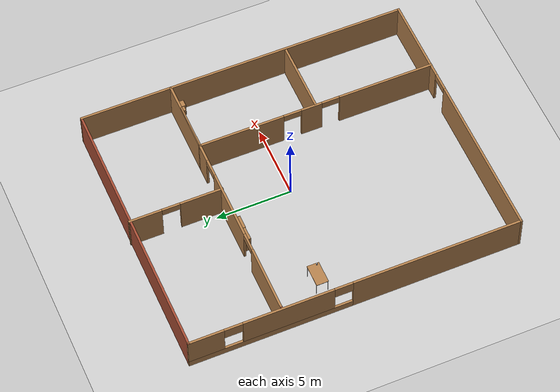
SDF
<sdf version="1.6">
 <world name="default">
  <light name="sun" type="directional">
   <pose>0 0 10 0 -0 0</pose>
   <diffuse>0.8 0.8 0.8 1</diffuse>
   <specular>0.2 0.2 0.2 1</specular>
   <attenuation>
    <range>1000</range>
    <constant>0.9</constant>
    <linear>0.01</linear>
    <quadratic>0.001</quadratic>
   </attenuation>
   <direction>-0.5 0.1 -0.9</direction>
  </light>
  <model name="ground_plane">
   <static>1</static>
   <link name="link">
    <collision name="collision">
     <geometry><plane><normal>0 0 1</normal><size>100 100</size></plane></geometry>
     <surface>
      <contact><collide_bitmask>65535</collide_bitmask></contact>
      <friction><ode><mu>100</mu><mu2>50</mu2></ode></friction>
     </surface>
    </collision>
    <visual name="visual">
     <cast_shadows>0</cast_shadows>
     <geometry><plane><normal>0 0 1</normal><size>100 100</size></plane></geometry>
     <material>
      <script><uri>file://media/materials/scripts/gazebo.material</uri><name>Gazebo/Grey</name></script>
     </material>
    </visual>
   </link>
  </model>
  <gravity>0 0 -9.8</gravity>
  <magnetic_field>6e-06 2.3e-05 -4.2e-05</magnetic_field>
  <atmosphere type="adiabatic"/>
  <physics name="default_physics" default="0" type="ode">
   <max_step_size>0.001</max_step_size>
   <real_time_factor>1</real_time_factor>
   <real_time_update_rate>1000</real_time_update_rate>
  </physics>
  <scene><ambient>0.4 0.4 0.4 1</ambient><background>0.7 0.7 0.7 1</background><shadows>1</shadows></scene>
  <audio><device>default</device></audio>
  <spherical_coordinates>
   <surface_model>EARTH_WGS84</surface_model>
   <latitude_deg>0</latitude_deg>
   <longitude_deg>0</longitude_deg>
   <elevation>0</elevation>
   <heading_deg>0</heading_deg>
  </spherical_coordinates>
  <model name="Apartment_plan">
   <pose>-0.153982 -0.4243 0 0 -0 0</pose>
   <link name="Wall_11">
    <collision name="Wall_11_Collision">
     <geometry><box><size>18 0.15 2.5</size></box></geometry>
     <pose>0 0 1.25 0 -0 0</pose>
    </collision>
    <visual name="Wall_11_Visual">
     <pose>0 0 1.25 0 -0 0</pose>
     <geometry><box><size>18 0.15 2.5</size></box></geometry>
     <material>
      <script><uri>file://media/materials/scripts/gazebo.material</uri><name>Gazebo/Bricks</name></script>
      <ambient>0.996078 0.47451 0.0196078 1</ambient>
     </material>
     <meta><layer>0</layer></meta>
    </visual>
    <pose>0 10.9013 0 0 -0 0</pose>
   </link>
   <link name="Wall_13">
    <collision name="Wall_13_Collision">
     <geometry><box><size>22 0.15 2.5</size></box></geometry>
     <pose>0 0 1.25 0 -0 0</pose>
    </collision>
    <visual name="Wall_13_Visual">
     <pose>0 0 1.25 0 -0 0</pose>
     <geometry><box><size>22 0.15 2.5</size></box></geometry>
     <material>
      <script><uri>file://media/materials/scripts/gazebo.material</uri><name>Gazebo/Wood</name></script>
      <ambient>1 1 1 1</ambient>
     </material>
     <meta><layer>0</layer></meta>
    </visual>
    <pose>8.925 -0.023674 0 0 -0 1.5708</pose>
   </link>
   <link name="Wall_15">
    <pose>4.04673 -3.03739 0 0 -0 1.5708</pose>
    <visual name="Wall_15_Visual_0">
     <pose>-4.7743 0 1.25 0 -0 0</pose>
     <geometry><box><size>6.4514 0.15 2.5</size></box></geometry>
     <material>
      <script><uri>file://media/materials/scripts/gazebo.material</uri><name>Gazebo/Wood</name></script>
      <ambient>1 1 1 1</ambient>
     </material>
     <meta><layer>0</layer></meta>
    </visual>
    <collision name="Wall_15_Collision_0">
     <geometry><box><size>6.4514 0.15 2.5</size></box></geometry>
     <pose>-4.7743 0 1.25 0 -0 0</pose>
    </collision>
    <visual name="Wall_15_Visual_1">
     <pose>0.354806 0 1.25 0 -0 0</pose>
     <geometry><box><size>1.40682 0.15 2.5</size></box></geometry>
     <material>
      <script><uri>file://media/materials/scripts/gazebo.material</uri><name>Gazebo/Wood</name></script>
      <ambient>1 1 1 1</ambient>
     </material>
     <meta><layer>0</layer></meta>
    </visual>
    <collision name="Wall_15_Collision_1">
     <geometry><box><size>1.40682 0.15 2.5</size></box></geometry>
     <pose>0.354806 0 1.25 0 -0 0</pose>
    </collision>
    <visual name="Wall_15_Visual_2">
     <pose>5.12911 0 1.25 0 -0 0</pose>
     <geometry><box><size>5.74179 0.15 2.5</size></box></geometry>
     <material>
      <script><uri>file://media/materials/scripts/gazebo.material</uri><name>Gazebo/Wood</name></script>
      <ambient>1 1 1 1</ambient>
     </material>
     <meta><layer>0</layer></meta>
    </visual>
    <collision name="Wall_15_Collision_2">
     <geometry><box><size>5.74179 0.15 2.5</size></box></geometry>
     <pose>5.12911 0 1.25 0 -0 0</pose>
    </collision>
    <visual name="Wall_15_Visual_3">
     <pose>-0.948604 0 2.25 0 -0 0</pose>
     <geometry><box><size>1.2 0.15 0.5</size></box></geometry>
     <material>
      <script><uri>file://media/materials/scripts/gazebo.material</uri><name>Gazebo/Wood</name></script>
      <ambient>1 1 1 1</ambient>
     </material>
     <meta><layer>0</layer></meta>
    </visual>
    <collision name="Wall_15_Collision_3">
     <geometry><box><size>1.2 0.15 0.5</size></box></geometry>
     <pose>-0.948604 0 2.25 0 -0 0</pose>
    </collision>
    <visual name="Wall_15_Visual_4">
     <pose>1.65821 0 2.25 0 -0 0</pose>
     <geometry><box><size>1.2 0.15 0.5</size></box></geometry>
     <material>
      <script><uri>file://media/materials/scripts/gazebo.material</uri><name>Gazebo/Wood</name></script>
      <ambient>1 1 1 1</ambient>
     </material>
     <meta><layer>0</layer></meta>
    </visual>
    <collision name="Wall_15_Collision_4">
     <geometry><box><size>1.2 0.15 0.5</size></box></geometry>
     <pose>1.65821 0 2.25 0 -0 0</pose>
    </collision>
   </link>
   <link name="Wall_16">
    <collision name="Wall_16_Collision">
     <geometry><box><size>5 0.15 2.5</size></box></geometry>
     <pose>0 0 1.25 0 -0 0</pose>
    </collision>
    <visual name="Wall_16_Visual">
     <pose>0 0 1.25 0 -0 0</pose>
     <geometry><box><size>5 0.15 2.5</size></box></geometry>
     <material>
      <script><uri>file://media/materials/scripts/gazebo.material</uri><name>Gazebo/Wood</name></script>
      <ambient>1 1 1 1</ambient>
     </material>
     <meta><layer>0</layer></meta>
    </visual>
    <pose>6.47173 4.88761 0 0 -0 0</pose>
   </link>
   <link name="Wall_17">
    <pose>0.096731 4.88761 0 0 -0 3.14159</pose>
    <visual name="Wall_17_Visual_0">
     <pose>-5.80484 0 1.25 0 -0 0</pose>
     <geometry><box><size>6.14032 0.15 2.5</size></box></geometry>
     <material>
      <script><uri>file://media/materials/scripts/gazebo.material</uri><name>Gazebo/Wood</name></script>
      <ambient>0.533333 0.541176 0.521569 1</ambient>
     </material>
     <meta><layer>0</layer></meta>
    </visual>
    <collision name="Wall_17_Collision_0">
     <geometry><box><size>6.14032 0.15 2.5</size></box></geometry>
     <pose>-5.80484 0 1.25 0 -0 0</pose>
    </collision>
    <visual name="Wall_17_Visual_1">
     <pose>0.844546 0 1.25 0 -0 0</pose>
     <geometry><box><size>4.75844 0.15 2.5</size></box></geometry>
     <material>
      <script><uri>file://media/materials/scripts/gazebo.material</uri><name>Gazebo/Wood</name></script>
      <ambient>0.533333 0.541176 0.521569 1</ambient>
     </material>
     <meta><layer>0</layer></meta>
    </visual>
    <collision name="Wall_17_Collision_1">
     <geometry><box><size>4.75844 0.15 2.5</size></box></geometry>
     <pose>0.844546 0 1.25 0 -0 0</pose>
    </collision>
    <visual name="Wall_17_Visual_2">
     <pose>6.64938 0 1.25 0 -0 0</pose>
     <geometry><box><size>4.45123 0.15 2.5</size></box></geometry>
     <material>
      <script><uri>file://media/materials/scripts/gazebo.material</uri><name>Gazebo/Wood</name></script>
      <ambient>0.533333 0.541176 0.521569 1</ambient>
     </material>
     <meta><layer>0</layer></meta>
    </visual>
    <collision name="Wall_17_Collision_2">
     <geometry><box><size>4.45123 0.15 2.5</size></box></geometry>
     <pose>6.64938 0 1.25 0 -0 0</pose>
    </collision>
    <visual name="Wall_17_Visual_3">
     <pose>-2.13468 0 2.25 0 -0 0</pose>
     <geometry><box><size>1.2 0.15 0.5</size></box></geometry>
     <material>
      <script><uri>file://media/materials/scripts/gazebo.material</uri><name>Gazebo/Wood</name></script>
      <ambient>0.533333 0.541176 0.521569 1</ambient>
     </material>
     <meta><layer>0</layer></meta>
    </visual>
    <collision name="Wall_17_Collision_3">
     <geometry><box><size>1.2 0.15 0.5</size></box></geometry>
     <pose>-2.13468 0 2.25 0 -0 0</pose>
    </collision>
    <visual name="Wall_17_Visual_4">
     <pose>3.82377 0 2.25 0 -0 0</pose>
     <geometry><box><size>1.2 0.15 0.5</size></box></geometry>
     <material>
      <script><uri>file://media/materials/scripts/gazebo.material</uri><name>Gazebo/Wood</name></script>
      <ambient>0.533333 0.541176 0.521569 1</ambient>
     </material>
     <meta><layer>0</layer></meta>
    </visual>
    <collision name="Wall_17_Collision_4">
     <geometry><box><size>1.2 0.15 0.5</size></box></geometry>
     <pose>3.82377 0 2.25 0 -0 0</pose>
    </collision>
   </link>
   <link name="Wall_18">
    <collision name="Wall_18_Collision">
     <geometry><box><size>0.15 0.15 2.5</size></box></geometry>
     <pose>0 0 1.25 0 -0 0</pose>
    </collision>
    <visual name="Wall_18_Visual">
     <pose>0 0 1.25 0 -0 0</pose>
     <geometry><box><size>0.15 0.15 2.5</size></box></geometry>
     <material>
      <script><uri>file://media/materials/scripts/gazebo.material</uri><name>Gazebo/Grey</name></script>
      <ambient>1 1 1 1</ambient>
     </material>
     <meta><layer>0</layer></meta>
    </visual>
    <pose>-8.70327 4.88761 0 0 -0 0</pose>
   </link>
   <link name="Wall_19">
    <collision name="Wall_19_Collision">
     <geometry><box><size>0.25 0.15 2.5</size></box></geometry>
     <pose>0 0 1.25 0 -0 0</pose>
    </collision>
    <visual name="Wall_19_Visual">
     <pose>0 0 1.25 0 -0 0</pose>
     <geometry><box><size>0.25 0.15 2.5</size></box></geometry>
     <material>
      <script><uri>file://media/materials/scripts/gazebo.material</uri><name>Gazebo/Bricks</name></script>
      <ambient>1 1 1 1</ambient>
     </material>
     <meta><layer>0</layer></meta>
    </visual>
    <pose>-8.75327 4.88761 0 0 -0 3.14159</pose>
   </link>
   <link name="Wall_21">
    <pose>0.498992 7.91239 0 0 -0 1.5708</pose>
    <visual name="Wall_21_Visual_0">
     <pose>-1.69364 0 1.25 0 -0 0</pose>
     <geometry><box><size>2.86272 0.15 2.5</size></box></geometry>
     <material>
      <script><uri>file://media/materials/scripts/gazebo.material</uri><name>Gazebo/Wood</name></script>
      <ambient>1 1 1 1</ambient>
     </material>
     <meta><layer>0</layer></meta>
    </visual>
    <collision name="Wall_21_Collision_0">
     <geometry><box><size>2.86272 0.15 2.5</size></box></geometry>
     <pose>-1.69364 0 1.25 0 -0 0</pose>
    </collision>
    <visual name="Wall_21_Visual_1">
     <pose>2.03136 0 1.25 0 -0 0</pose>
     <geometry><box><size>2.18729 0.15 2.5</size></box></geometry>
     <material>
      <script><uri>file://media/materials/scripts/gazebo.material</uri><name>Gazebo/Wood</name></script>
      <ambient>1 1 1 1</ambient>
     </material>
     <meta><layer>0</layer></meta>
    </visual>
    <collision name="Wall_21_Collision_1">
     <geometry><box><size>2.18729 0.15 2.5</size></box></geometry>
     <pose>2.03136 0 1.25 0 -0 0</pose>
    </collision>
    <visual name="Wall_21_Visual_2">
     <pose>0.337715 0 2.25 0 -0 0</pose>
     <geometry><box><size>1.2 0.15 0.5</size></box></geometry>
     <material>
      <script><uri>file://media/materials/scripts/gazebo.material</uri><name>Gazebo/Wood</name></script>
      <ambient>1 1 1 1</ambient>
     </material>
     <meta><layer>0</layer></meta>
    </visual>
    <collision name="Wall_21_Collision_2">
     <geometry><box><size>1.2 0.15 0.5</size></box></geometry>
     <pose>0.337715 0 2.25 0 -0 0</pose>
    </collision>
   </link>
   <link name="Wall_23">
    <collision name="Wall_23_Collision">
     <geometry><box><size>4.75 0.15 2.5</size></box></geometry>
     <pose>0 0 1.25 0 -0 0</pose>
    </collision>
    <visual name="Wall_23_Visual">
     <pose>0 0 1.25 0 -0 0</pose>
     <geometry><box><size>4.75 0.15 2.5</size></box></geometry>
     <material>
      <script><uri>file://media/materials/scripts/gazebo.material</uri><name>Gazebo/Wood</name></script>
      <ambient>1 1 1 1</ambient>
     </material>
     <meta><layer>0</layer></meta>
    </visual>
    <pose>6.44662 -2.97518 0 0 -0 0</pose>
   </link>
   <link name="Wall_7">
    <pose>0 -10.9487 0 0 -0 0</pose>
    <visual name="Wall_7_Visual_0">
     <pose>-3.4981 0 1.25 0 -0 0</pose>
     <geometry><box><size>11.0038 0.15 2.5</size></box></geometry>
     <material>
      <script><uri>file://media/materials/scripts/gazebo.material</uri><name>Gazebo/Wood</name></script>
      <ambient>1 1 1 1</ambient>
     </material>
     <meta><layer>0</layer></meta>
    </visual>
    <collision name="Wall_7_Collision_0">
     <geometry><box><size>11.0038 0.15 2.5</size></box></geometry>
     <pose>-3.4981 0 1.25 0 -0 0</pose>
    </collision>
    <visual name="Wall_7_Visual_1">
     <pose>6.10191 0 1.25 0 -0 0</pose>
     <geometry><box><size>5.79619 0.15 2.5</size></box></geometry>
     <material>
      <script><uri>file://media/materials/scripts/gazebo.material</uri><name>Gazebo/Wood</name></script>
      <ambient>1 1 1 1</ambient>
     </material>
     <meta><layer>0</layer></meta>
    </visual>
    <collision name="Wall_7_Collision_1">
     <geometry><box><size>5.79619 0.15 2.5</size></box></geometry>
     <pose>6.10191 0 1.25 0 -0 0</pose>
    </collision>
    <visual name="Wall_7_Visual_2">
     <pose>2.60381 0 2.25 0 -0 0</pose>
     <geometry><box><size>1.2 0.15 0.5</size></box></geometry>
     <material>
      <script><uri>file://media/materials/scripts/gazebo.material</uri><name>Gazebo/Wood</name></script>
      <ambient>1 1 1 1</ambient>
     </material>
     <meta><layer>0</layer></meta>
    </visual>
    <collision name="Wall_7_Collision_2">
     <geometry><box><size>1.2 0.15 0.5</size></box></geometry>
     <pose>2.60381 0 2.25 0 -0 0</pose>
    </collision>
   </link>
   <link name="Wall_9">
    <pose>-8.925 -0.023674 0 0 -0 1.5708</pose>
    <visual name="Wall_9_Visual_0">
     <pose>-5.35285 0 1.25 0 -0 0</pose>
     <geometry><box><size>11.2943 0.15 2.5</size></box></geometry>
     <material>
      <script><uri>file://media/materials/scripts/gazebo.material</uri><name>Gazebo/Wood</name></script>
      <ambient>0.533333 0.541176 0.521569 1</ambient>
     </material>
     <meta><layer>0</layer></meta>
    </visual>
    <collision name="Wall_9_Collision_0">
     <geometry><box><size>11.2943 0.15 2.5</size></box></geometry>
     <pose>-5.35285 0 1.25 0 -0 0</pose>
    </collision>
    <visual name="Wall_9_Visual_1">
     <pose>5.64715 0 0.25 0 -0 0</pose>
     <geometry><box><size>10.7057 0.15 0.5</size></box></geometry>
     <material>
      <script><uri>file://media/materials/scripts/gazebo.material</uri><name>Gazebo/Wood</name></script>
      <ambient>0.533333 0.541176 0.521569 1</ambient>
     </material>
     <meta><layer>0</layer></meta>
    </visual>
    <collision name="Wall_9_Collision_1">
     <geometry><box><size>10.7057 0.15 0.5</size></box></geometry>
     <pose>5.64715 0 0.25 0 -0 0</pose>
    </collision>
    <visual name="Wall_9_Visual_2">
     <pose>4.47763 0 1.5 0 -0 0</pose>
     <geometry><box><size>5.96668 0.15 2</size></box></geometry>
     <material>
      <script><uri>file://media/materials/scripts/gazebo.material</uri><name>Gazebo/Wood</name></script>
      <ambient>0.533333 0.541176 0.521569 1</ambient>
     </material>
     <meta><layer>0</layer></meta>
    </visual>
    <collision name="Wall_9_Collision_2">
     <geometry><box><size>5.96668 0.15 2</size></box></geometry>
     <pose>4.47763 0 1.5 0 -0 0</pose>
    </collision>
    <visual name="Wall_9_Visual_3">
     <pose>9.83049 0 1.5 0 -0 0</pose>
     <geometry><box><size>2.33903 0.15 2</size></box></geometry>
     <material>
      <script><uri>file://media/materials/scripts/gazebo.material</uri><name>Gazebo/Wood</name></script>
      <ambient>0.533333 0.541176 0.521569 1</ambient>
     </material>
     <meta><layer>0</layer></meta>
    </visual>
    <collision name="Wall_9_Collision_3">
     <geometry><box><size>2.33903 0.15 2</size></box></geometry>
     <pose>9.83049 0 1.5 0 -0 0</pose>
    </collision>
    <visual name="Wall_9_Visual_4">
     <pose>0.894292 0 2.1 0 -0 0</pose>
     <geometry><box><size>1.2 0.15 0.8</size></box></geometry>
     <material>
      <script><uri>file://media/materials/scripts/gazebo.material</uri><name>Gazebo/Wood</name></script>
      <ambient>0.533333 0.541176 0.521569 1</ambient>
     </material>
     <meta><layer>0</layer></meta>
    </visual>
    <collision name="Wall_9_Collision_4">
     <geometry><box><size>1.2 0.15 0.8</size></box></geometry>
     <pose>0.894292 0 2.1 0 -0 0</pose>
    </collision>
    <visual name="Wall_9_Visual_5">
     <pose>8.06097 0 2.1 0 -0 0</pose>
     <geometry><box><size>1.2 0.15 0.8</size></box></geometry>
     <material>
      <script><uri>file://media/materials/scripts/gazebo.material</uri><name>Gazebo/Wood</name></script>
      <ambient>0.533333 0.541176 0.521569 1</ambient>
     </material>
     <meta><layer>0</layer></meta>
    </visual>
    <collision name="Wall_9_Collision_5">
     <geometry><box><size>1.2 0.15 0.8</size></box></geometry>
     <pose>8.06097 0 2.1 0 -0 0</pose>
    </collision>
   </link>
   <static>1</static>
  </model>
  <model name="table">
   <static>1</static>
   <link name="link">
    <collision name="surface">
     <pose>0 0 1 0 -0 0</pose>
     <geometry><box><size>1.5 0.8 0.03</size></box></geometry>
     <surface><friction><ode><mu>0.6</mu><mu2>0.6</mu2></ode></friction></surface>
    </collision>
    <visual name="visual1">
     <pose>0 0 1 0 -0 0</pose>
     <geometry><box><size>1.5 0.8 0.03</size></box></geometry>
     <material>
      <script><uri>file://media/materials/scripts/gazebo.material</uri><name>Gazebo/Wood</name></script>
     </material>
    </visual>
    <collision name="front_left_leg">
     <pose>0.68 0.38 0.5 0 -0 0</pose>
     <geometry><cylinder><radius>0.02</radius><length>1</length></cylinder></geometry>
    </collision>
    <visual name="front_left_leg">
     <pose>0.68 0.38 0.5 0 -0 0</pose>
     <geometry><cylinder><radius>0.02</radius><length>1</length></cylinder></geometry>
     <material>
      <script><uri>file://media/materials/scripts/gazebo.material</uri><name>Gazebo/Grey</name></script>
     </material>
    </visual>
    <collision name="front_right_leg">
     <pose>0.68 -0.38 0.5 0 -0 0</pose>
     <geometry><cylinder><radius>0.02</radius><length>1</length></cylinder></geometry>
    </collision>
    <visual name="front_right_leg">
     <pose>0.68 -0.38 0.5 0 -0 0</pose>
     <geometry><cylinder><radius>0.02</radius><length>1</length></cylinder></geometry>
     <material>
      <script><uri>file://media/materials/scripts/gazebo.material</uri><name>Gazebo/Grey</name></script>
     </material>
    </visual>
    <collision name="back_right_leg">
     <pose>-0.68 -0.38 0.5 0 -0 0</pose>
     <geometry><cylinder><radius>0.02</radius><length>1</length></cylinder></geometry>
    </collision>
    <visual name="back_right_leg">
     <pose>-0.68 -0.38 0.5 0 -0 0</pose>
     <geometry><cylinder><radius>0.02</radius><length>1</length></cylinder></geometry>
     <material>
      <script><uri>file://media/materials/scripts/gazebo.material</uri><name>Gazebo/Grey</name></script>
     </material>
    </visual>
    <collision name="back_left_leg">
     <pose>-0.68 0.38 0.5 0 -0 0</pose>
     <geometry><cylinder><radius>0.02</radius><length>1</length></cylinder></geometry>
    </collision>
    <visual name="back_left_leg">
     <pose>-0.68 0.38 0.5 0 -0 0</pose>
     <geometry><cylinder><radius>0.02</radius><length>1</length></cylinder></geometry>
     <material>
      <script><uri>file://media/materials/scripts/gazebo.material</uri><name>Gazebo/Grey</name></script>
     </material>
    </visual>
   </link>
   <pose>-6.8066 1.15102 0 0 -0 0</pose>
  </model>
  <model name="cabinet">
   <static>1</static>
   <link name="cabinet_bottom_plate">
    <inertial>
     <pose>0 0 -1 0 -0 0</pose>
     <inertia><ixx>2.05</ixx><ixy>0</ixy><ixz>0</ixz><iyy>2.05</iyy><iyz>0</iyz><izz>2.05</izz></inertia>
     <mass>25</mass>
    </inertial>
    <collision name="cabinet_bottom_plate_geom">
     <pose>0 0 0.01 0 -0 0</pose>
     <geometry><box><size>0.45 0.45 0.02</size></box></geometry>
    </collision>
    <visual name="cabinet_bottom_plate_geom_visual">
     <pose>0 0 0.01 0 -0 0</pose>
     <geometry><box><size>0.45 0.45 0.02</size></box></geometry>
     <material>
      <script><uri>file://media/materials/scripts/gazebo.material</uri><name>Gazebo/Wood</name></script>
     </material>
    </visual>
    <collision name="cabinet_bottom_plate_geom_cabinet_back_plate">
     <pose>0.235 0 0.51 0 -0 0</pose>
     <geometry><box><size>0.02 0.45 1.02</size></box></geometry>
    </collision>
    <visual name="cabinet_bottom_plate_geom_cabinet_back_plate_visual">
     <pose>0.235 0 0.51 0 -0 0</pose>
     <geometry><box><size>0.02 0.45 1.02</size></box></geometry>
     <material>
      <script><uri>file://media/materials/scripts/gazebo.material</uri><name>Gazebo/Wood</name></script>
     </material>
    </visual>
    <collision name="cabinet_bottom_plate_geom_cabinet_left_plate">
     <pose>0 0.235 0.51 0 -0 0</pose>
     <geometry><box><size>0.45 0.02 1.02</size></box></geometry>
    </collision>
    <visual name="cabinet_bottom_plate_geom_cabinet_left_plate_visual">
     <pose>0 0.235 0.51 0 -0 0</pose>
     <geometry><box><size>0.45 0.02 1.02</size></box></geometry>
     <material>
      <script><uri>file://media/materials/scripts/gazebo.material</uri><name>Gazebo/Wood</name></script>
     </material>
    </visual>
    <collision name="cabinet_bottom_plate_geom_cabinet_middle_plate">
     <pose>0 0 0.51 0 -0 0</pose>
     <geometry><box><size>0.45 0.45 0.02</size></box></geometry>
    </collision>
    <visual name="cabinet_bottom_plate_geom_cabinet_middle_plate_visual">
     <pose>0 0 0.51 0 -0 0</pose>
     <geometry><box><size>0.45 0.45 0.02</size></box></geometry>
     <material>
      <script><uri>file://media/materials/scripts/gazebo.material</uri><name>Gazebo/Wood</name></script>
     </material>
    </visual>
    <collision name="cabinet_bottom_plate_geom_cabinet_right_plate">
     <pose>0 -0.235 0.51 0 -0 0</pose>
     <geometry><box><size>0.45 0.02 1.02</size></box></geometry>
    </collision>
    <visual name="cabinet_bottom_plate_geom_cabinet_right_plate_visual">
     <pose>0 -0.235 0.51 0 -0 0</pose>
     <geometry><box><size>0.45 0.02 1.02</size></box></geometry>
     <material>
      <script><uri>file://media/materials/scripts/gazebo.material</uri><name>Gazebo/Wood</name></script>
     </material>
    </visual>
    <collision name="cabinet_bottom_plate_geom_cabinet_top_plate">
     <pose>0 0 1.01 0 -0 0</pose>
     <geometry><box><size>0.45 0.45 0.02</size></box></geometry>
    </collision>
    <visual name="cabinet_bottom_plate_geom_cabinet_top_plate_visual">
     <pose>0 0 1.01 0 -0 0</pose>
     <geometry><box><size>0.45 0.45 0.02</size></box></geometry>
     <material>
      <script><uri>file://media/materials/scripts/gazebo.material</uri><name>Gazebo/Wood</name></script>
     </material>
    </visual>
   </link>
   <pose>8.36254 3.98394 0 0 -0 0</pose>
  </model>
  <model name="bookshelf">
   <static>1</static>
   <link name="link">
    <inertial><mass>1</mass></inertial>
    <collision name="back">
     <pose>0 0.005 0.6 0 -0 0</pose>
     <geometry><box><size>0.9 0.01 1.2</size></box></geometry>
    </collision>
    <visual name="visual1">
     <pose>0 0.005 0.6 0 -0 0</pose>
     <geometry><box><size>0.9 0.01 1.2</size></box></geometry>
     <material>
      <script><uri>file://media/materials/scripts/gazebo.material</uri><name>Gazebo/Wood</name></script>
     </material>
    </visual>
    <collision name="left_side">
     <pose>0.45 -0.195 0.6 0 -0 0</pose>
     <geometry><box><size>0.02 0.4 1.2</size></box></geometry>
    </collision>
    <visual name="visual2">
     <pose>0.45 -0.195 0.6 0 -0 0</pose>
     <geometry><box><size>0.02 0.4 1.2</size></box></geometry>
     <material>
      <script><uri>file://media/materials/scripts/gazebo.material</uri><name>Gazebo/Wood</name></script>
     </material>
    </visual>
    <collision name="right_side">
     <pose>-0.45 -0.195 0.6 0 -0 0</pose>
     <geometry><box><size>0.02 0.4 1.2</size></box></geometry>
    </collision>
    <visual name="visual3">
     <pose>-0.45 -0.195 0.6 0 -0 0</pose>
     <geometry><box><size>0.02 0.4 1.2</size></box></geometry>
     <material>
      <script><uri>file://media/materials/scripts/gazebo.material</uri><name>Gazebo/Wood</name></script>
     </material>
    </visual>
    <collision name="bottom">
     <pose>0 -0.195 0.03 0 -0 0</pose>
     <geometry><box><size>0.88 0.4 0.06</size></box></geometry>
    </collision>
    <visual name="visual4">
     <pose>0 -0.195 0.03 0 -0 0</pose>
     <geometry><box><size>0.88 0.4 0.06</size></box></geometry>
     <material>
      <script><uri>file://media/materials/scripts/gazebo.material</uri><name>Gazebo/Wood</name></script>
     </material>
    </visual>
    <collision name="top">
     <pose>0 -0.195 1.19 0 -0 0</pose>
     <geometry><box><size>0.88 0.4 0.02</size></box></geometry>
    </collision>
    <visual name="visual5">
     <pose>0 -0.195 1.19 0 -0 0</pose>
     <geometry><box><size>0.88 0.4 0.02</size></box></geometry>
     <material>
      <script><uri>file://media/materials/scripts/gazebo.material</uri><name>Gazebo/Wood</name></script>
     </material>
    </visual>
    <collision name="low_shelf">
     <pose>0 -0.195 0.43 0 -0 0</pose>
     <geometry><box><size>0.88 0.4 0.02</size></box></geometry>
    </collision>
    <visual name="visual6">
     <pose>0 -0.195 0.43 0 -0 0</pose>
     <geometry><box><size>0.88 0.4 0.02</size></box></geometry>
     <material>
      <script><uri>file://media/materials/scripts/gazebo.material</uri><name>Gazebo/Wood</name></script>
     </material>
    </visual>
    <collision name="high_shelf">
     <pose>0 -0.195 0.8 0 -0 0</pose>
     <geometry><box><size>0.88 0.4 0.02</size></box></geometry>
    </collision>
    <visual name="visual7">
     <pose>0 -0.195 0.8 0 -0 0</pose>
     <geometry><box><size>0.88 0.4 0.02</size></box></geometry>
     <material>
      <script><uri>file://media/materials/scripts/gazebo.material</uri><name>Gazebo/Wood</name></script>
     </material>
    </visual>
   </link>
   <pose>-2.49455 4.31437 0 0 -0 0</pose>
  </model>
  <model name="bookshelf_0">
   <static>1</static>
   <link name="link">
    <inertial><mass>1</mass></inertial>
    <collision name="back">
     <pose>0 0.005 0.6 0 -0 0</pose>
     <geometry><box><size>0.9 0.01 1.2</size></box></geometry>
    </collision>
    <visual name="visual1">
     <pose>0 0.005 0.6 0 -0 0</pose>
     <geometry><box><size>0.9 0.01 1.2</size></box></geometry>
     <material>
      <script><uri>file://media/materials/scripts/gazebo.material</uri><name>Gazebo/Wood</name></script>
     </material>
    </visual>
    <collision name="left_side">
     <pose>0.45 -0.195 0.6 0 -0 0</pose>
     <geometry><box><size>0.02 0.4 1.2</size></box></geometry>
    </collision>
    <visual name="visual2">
     <pose>0.45 -0.195 0.6 0 -0 0</pose>
     <geometry><box><size>0.02 0.4 1.2</size></box></geometry>
     <material>
      <script><uri>file://media/materials/scripts/gazebo.material</uri><name>Gazebo/Wood</name></script>
     </material>
    </visual>
    <collision name="right_side">
     <pose>-0.45 -0.195 0.6 0 -0 0</pose>
     <geometry><box><size>0.02 0.4 1.2</size></box></geometry>
    </collision>
    <visual name="visual3">
     <pose>-0.45 -0.195 0.6 0 -0 0</pose>
     <geometry><box><size>0.02 0.4 1.2</size></box></geometry>
     <material>
      <script><uri>file://media/materials/scripts/gazebo.material</uri><name>Gazebo/Wood</name></script>
     </material>
    </visual>
    <collision name="bottom">
     <pose>0 -0.195 0.03 0 -0 0</pose>
     <geometry><box><size>0.88 0.4 0.06</size></box></geometry>
    </collision>
    <visual name="visual4">
     <pose>0 -0.195 0.03 0 -0 0</pose>
     <geometry><box><size>0.88 0.4 0.06</size></box></geometry>
     <material>
      <script><uri>file://media/materials/scripts/gazebo.material</uri><name>Gazebo/Wood</name></script>
     </material>
    </visual>
    <collision name="top">
     <pose>0 -0.195 1.19 0 -0 0</pose>
     <geometry><box><size>0.88 0.4 0.02</size></box></geometry>
    </collision>
    <visual name="visual5">
     <pose>0 -0.195 1.19 0 -0 0</pose>
     <geometry><box><size>0.88 0.4 0.02</size></box></geometry>
     <material>
      <script><uri>file://media/materials/scripts/gazebo.material</uri><name>Gazebo/Wood</name></script>
     </material>
    </visual>
    <collision name="low_shelf">
     <pose>0 -0.195 0.43 0 -0 0</pose>
     <geometry><box><size>0.88 0.4 0.02</size></box></geometry>
    </collision>
    <visual name="visual6">
     <pose>0 -0.195 0.43 0 -0 0</pose>
     <geometry><box><size>0.88 0.4 0.02</size></box></geometry>
     <material>
      <script><uri>file://media/materials/scripts/gazebo.material</uri><name>Gazebo/Wood</name></script>
     </material>
    </visual>
    <collision name="high_shelf">
     <pose>0 -0.195 0.8 0 -0 0</pose>
     <geometry><box><size>0.88 0.4 0.02</size></box></geometry>
    </collision>
    <visual name="visual7">
     <pose>0 -0.195 0.8 0 -0 0</pose>
     <geometry><box><size>0.88 0.4 0.02</size></box></geometry>
     <material>
      <script><uri>file://media/materials/scripts/gazebo.material</uri><name>Gazebo/Wood</name></script>
     </material>
    </visual>
   </link>
   <pose>-1.59454 4.29063 0 0 -0 0</pose>
  </model>
  <model name="aruco_cube_8cm">
   <static>0</static>
   <link name="link">
    <inertial>
     <mass>0.05</mass>
     <inertia>
      <ixx>5.2083e-05</ixx>
      <ixy>0</ixy>
      <ixz>0</ixz>
      <iyy>5.2083e-05</iyy>
      <iyz>0</iyz>
      <izz>2.0833e-05</izz>
     </inertia>
    </inertial>
    <collision name="colision">
     <geometry><box><size>0.05 0.05 0.1</size></box></geometry>
     <surface>
      <friction><ode><mu>30</mu><mu2>30</mu2><fdir1>0 0 0</fdir1></ode></friction>
      <contact><ode><kp>1e+06</kp><kd>100</kd><min_depth>0.0025</min_depth><max_vel>1</max_vel></ode></contact>
     </surface>
    </collision>
    <visual name="visual1">
     <geometry>
      <mesh><uri>model://aruco_cube_8cm/meshes/aruco_cube_8cm.dae</uri><scale>1 1 2</scale></mesh>
     </geometry>
    </visual>
    <velocity_decay><linear>0</linear><angular>0</angular></velocity_decay>
   </link>
   <pose>-6.17366 0.935778 1.06357 -0.000419 9.6e-05 0</pose>
  </model>
 </world>
</sdf>
